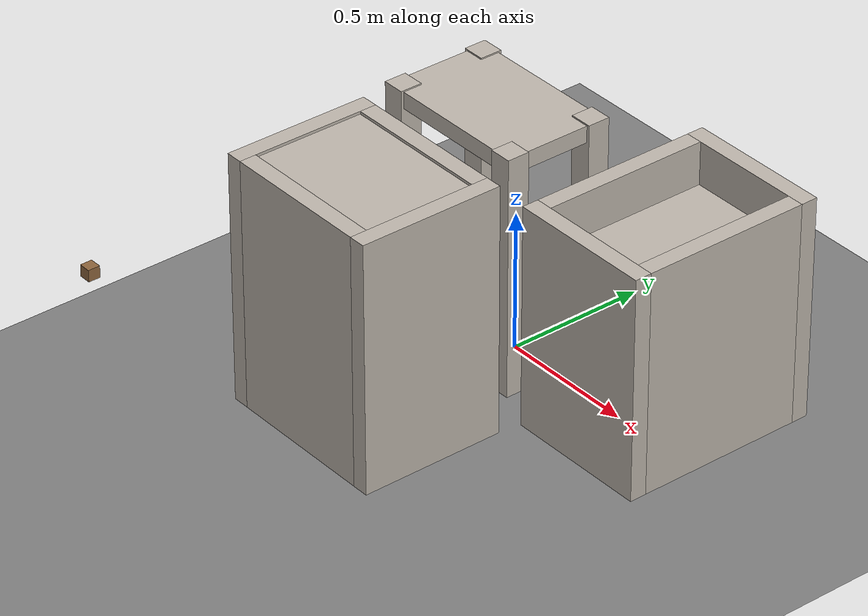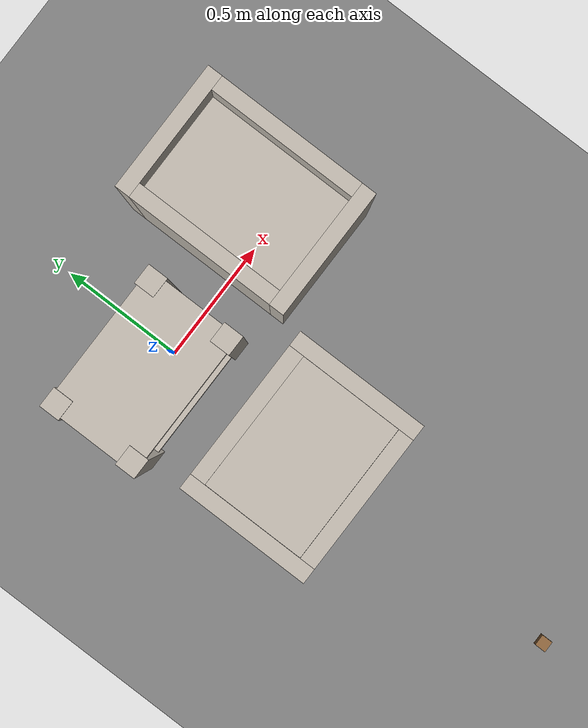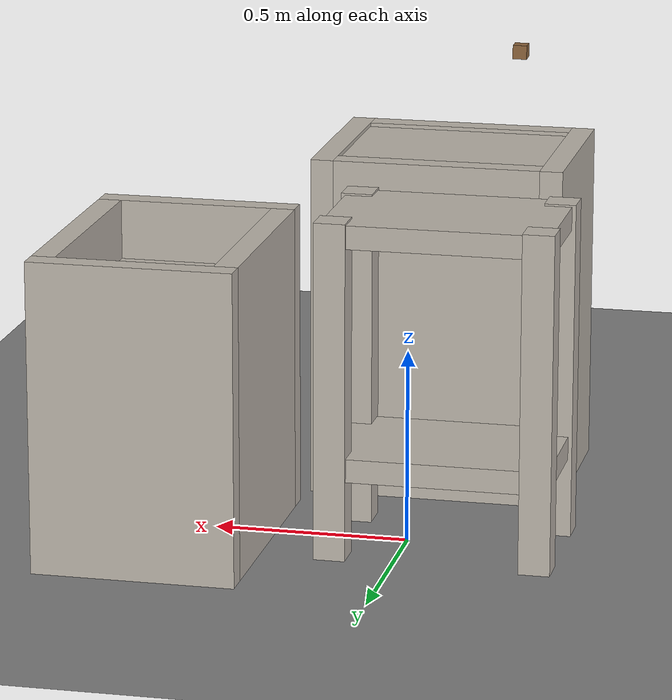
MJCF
<!--Link  MuJoCo modeling: http://www.mujoco.org/book/modeling.html-->

<mujoco model="ur5gripper">
    <compiler angle="radian"
              inertiafromgeom="true"
              texturedir="textures/"
              meshdir="mesh/visual/"/>
    <option timestep="2e-3"
            iterations="100"
            tolerance="1e-10"
            impratio="10"/>
            <!-- cone="elliptic" -->
    <size njmax="10000" nconmax="1500" nstack="3000000"/>

    <default>
        <site rgba="0.8 0.6 0.7 0.3" type="ellipsoid" group="3"/>
        <geom contype='1' conaffinity='1' condim='6'  margin="1e-3" solref=".01 1" solimp=".99 .99 .01" />
        <joint armature="0.01" damping=".1"/>
        <default class="UR5">
            <joint damping='65'/>
        </default>
        <default class="UR5e">
            <joint damping='45'/>
        </default>
        <default class="GRIPPER">
            <joint damping='5'/>
        </default>
    </default>

    <visual>
        <map fogstart="3" fogend="5" znear="0.05"/>
        <quality shadowsize="2048"/>
        <scale framelength="0.1"
               framewidth="0.005"
               contactwidth="0.1"
               contactheight="0.005"
               forcewidth="0.01"
               />
    </visual>

    <!--Assets-->
    <asset>

        <!--Textures-->
        <texture name="wood"        type="cube"     file="wood2.png"/>
        <texture name="metal"        type="cube"     file="metal2.png"/>
        <!--Materials-->
        <material name="bench_mat"      texture="metal"   shininess="0.1" specular="0.5" reflectance="0.2"/>
        <material name="tablecube"      texture="wood" rgba=".8 .8 .8 1"/>
    </asset>

    <!--MODEL DESCRIPTION-->
    <worldbody>
        <light pos='0 0 5' dir='0 0 -1' diffuse='0.9 0.9 0.9'/>
        <!--Floor Property-->
        <geom name='floor'  pos='0 0 0' size='2.5 2.5 0.1'  type='plane' />

        <body name="pick_box" pos="0 -0.6 0.0" euler="0 0 1.57">
            <geom size=".2 .28 .03" pos ="0 0 0.86" type="box" material="bench_mat"/>
            <geom size=".03 .27 .45" pos ="0.23 0.0 0.45" type="box" material="bench_mat"/>
            <geom size=".03 .27 .45" pos ="-0.23 0.0 0.45" type="box" material="bench_mat"/>
            <geom size=".26 .03 .45" pos ="0.0 0.3 0.45" type="box" material="bench_mat"/>
            <geom size=".26 .03 .45" pos ="0.0 -0.3 0.45" type="box" material="bench_mat"/>
            <inertial pos="0 0 0" mass="1000" diaginertia="0 0 0" />
        </body>

        <body name="drop_box" pos="0.6 0.1 0.0">
            <geom size=".2 .3 .03" pos ="0 0 0.615" type="box" material="bench_mat"/>
            <geom size=".03 .3 .4" pos ="0.23 0.0 0.4" type="box" material="bench_mat"/>
            <geom size=".03 .3 .4" pos ="-0.23 0.0 0.4" type="box" material="bench_mat"/>
            <geom size=".26 .03 .4" pos ="0.0 0.33 0.4" type="box" material="bench_mat"/>
            <geom size=".26 .03 .4" pos ="0.0 -0.33 0.4" type="box" material="bench_mat"/>
            <inertial pos="0 0 0" mass="1000" diaginertia="0 0 0" />
        </body>

        <body name="flat_box" pos="-0.1 0 0.435">
            <geom size=".29 .19 .03" pos ="0 0 0.4" type="box" material="bench_mat"/>
            <geom size=".29 .19 .03" pos ="0 0 -0.2" type="box" material="bench_mat"/>
            <geom size=".04 .04 .435" pos =".26 .16 0" type="box" material="bench_mat"/>
            <geom size=".04 .04 .435" pos ="-.26 .16 0" type="box" material="bench_mat"/>
            <geom size=".04 .04 .435" pos =".26 -.16 0" type="box" material="bench_mat"/>
            <geom size=".04 .04 .435" pos ="-.26 -.16 0" type="box" material="bench_mat"/>
            <inertial pos="0 0 0" mass="1000" diaginertia="0 0 0" />
    </body>

    <body name="box_1" pos=".0 -1.6 0.95">
        <joint armature="0" axis="1 0 0" damping="0" limited="true" name="box_1_x" pos="0 0 0" range="-5. 5." stiffness="0" type="slide"/>
        <joint armature="0" axis="0 1 0" damping="0" limited="true" name="box_1_y" pos="0 0 0" range="-5. 5." stiffness="0" type="slide"/>
        <joint armature="0" axis="0 0 1" damping="0" limited="true" name="box_1_z" pos="0 0 0" range="-2. 2." stiffness="0" type="slide"/>
        <joint armature="0" damping="0" name="box_1_rot" pos="0 0 0" stiffness="0" type="ball"/>
        <geom name="box_1" pos="0 0 0" material="tablecube" size="0.02 0.02 0.02" type="box"/>
    </body>
    </worldbody>
</mujoco>
